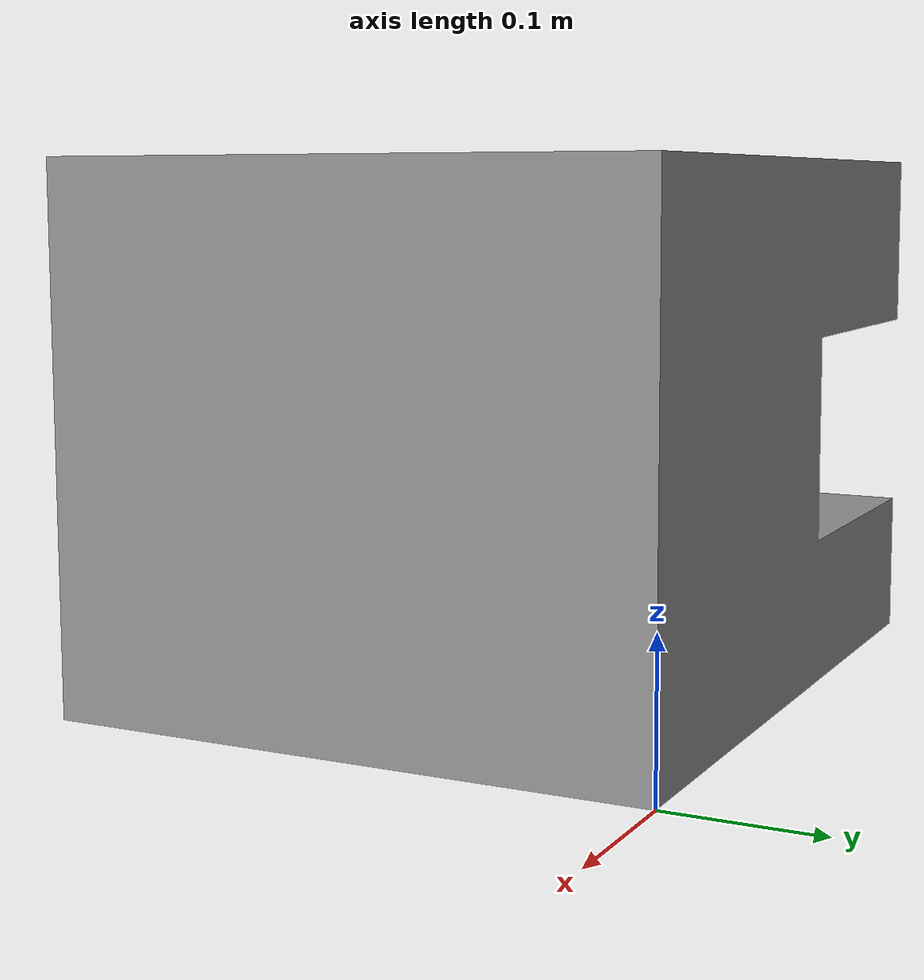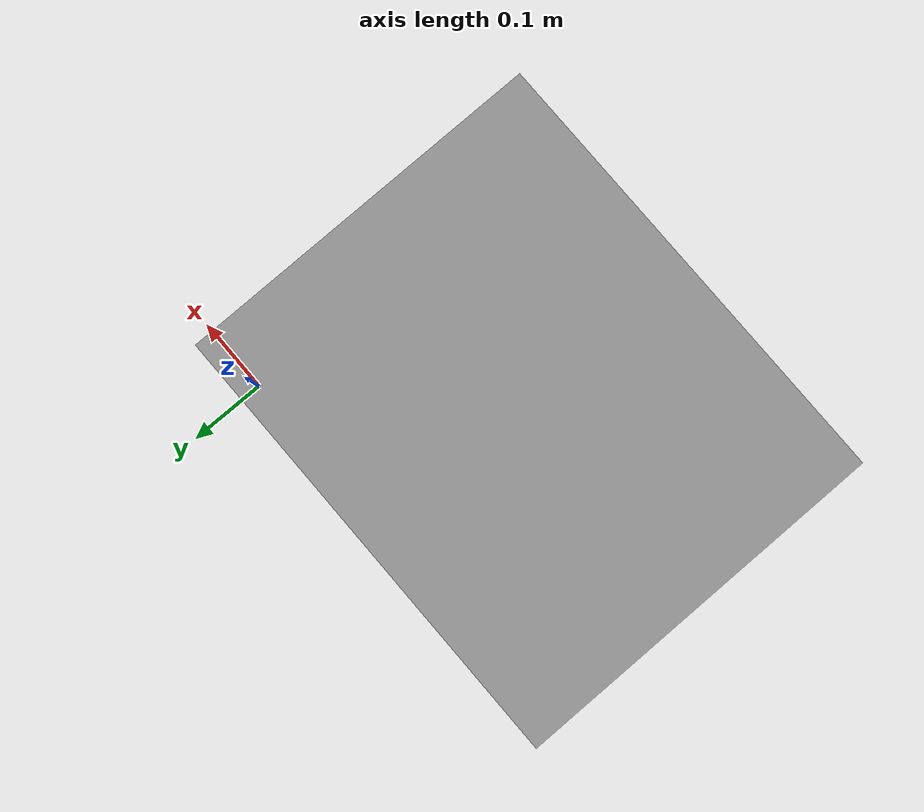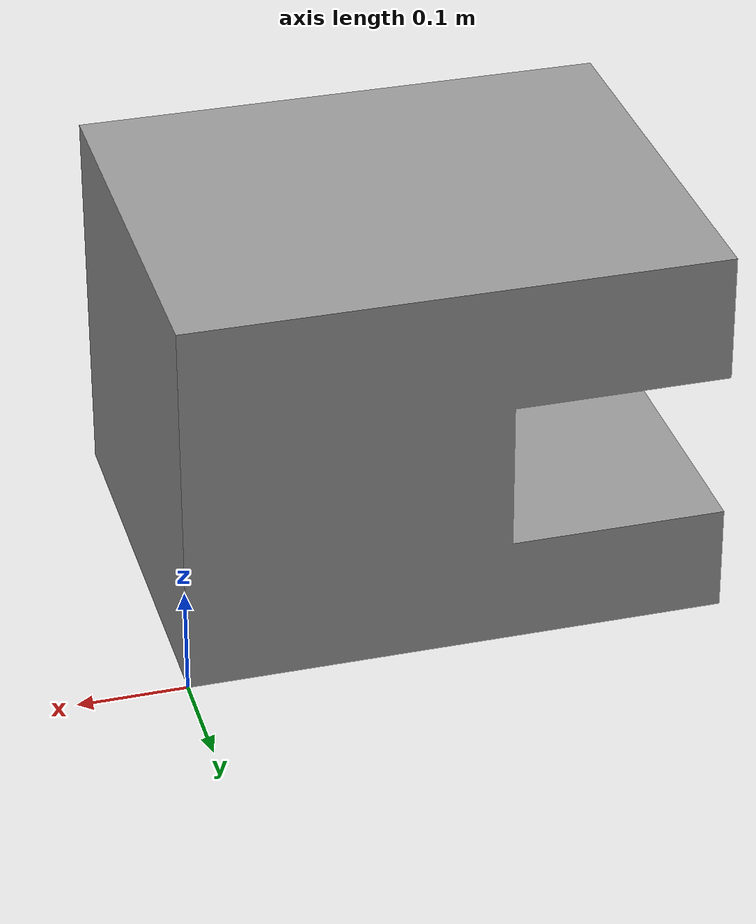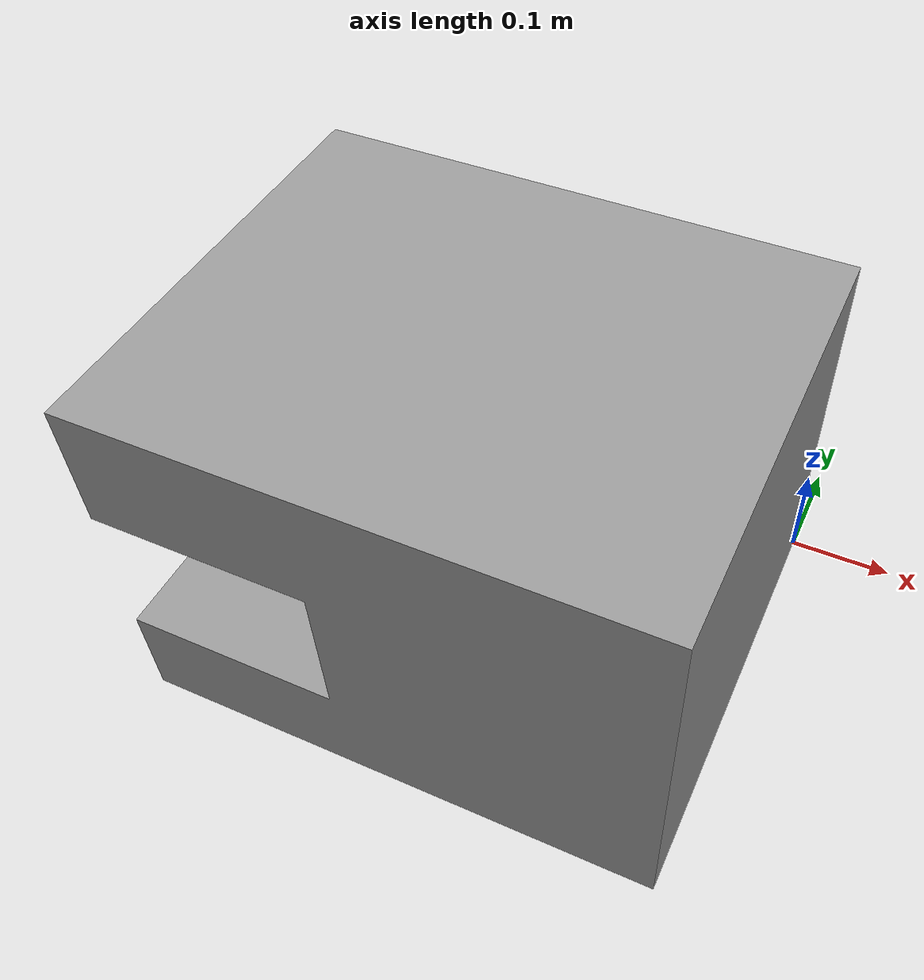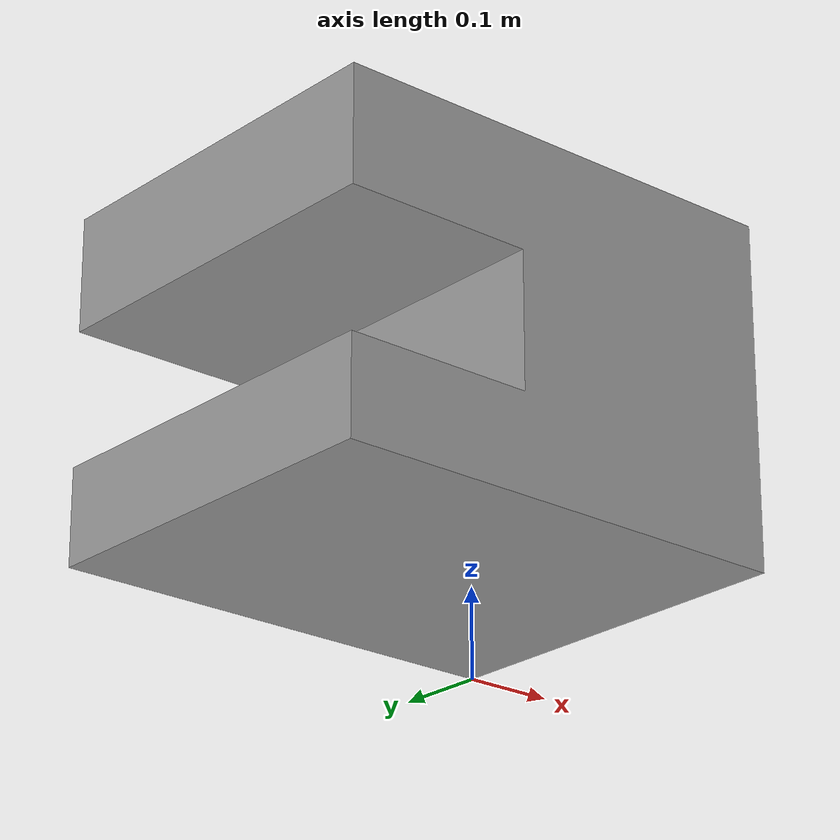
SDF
<?xml version="1.0" ?>
<sdf version="1.5">
  <model name="HPLC">
    <static>true</static>
    <link name="link">
      <visual name="visual">
        <geometry>
          <mesh>
            <uri>model://HPLC/meshes/hplc_box.dae</uri>
          </mesh>
        </geometry>
        <material>
						<script>
							<uri>file://media/materials/scripts/gazebo.material</uri>
							<name>Gazebo/Grey</name>
						</script>
				</material>
      </visual>
      <!-- collision -->
      <collision name="collision">
        <geometry>
          <mesh>
            <uri>model://HPLC/collision/hplc_box.stl</uri>
          </mesh>
        </geometry>
        <surface>
          <friction>
            <ode>
              <mu>10</mu>
              <mu2>10</mu2>
            </ode>
          </friction>
        </surface>
      </collision>
    </link>
  </model>

</sdf>
